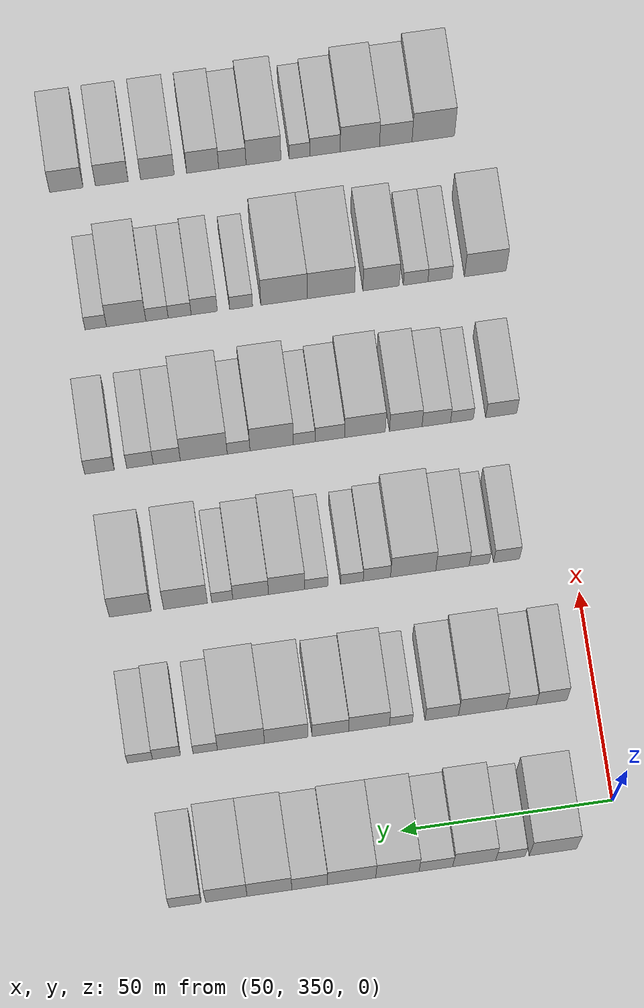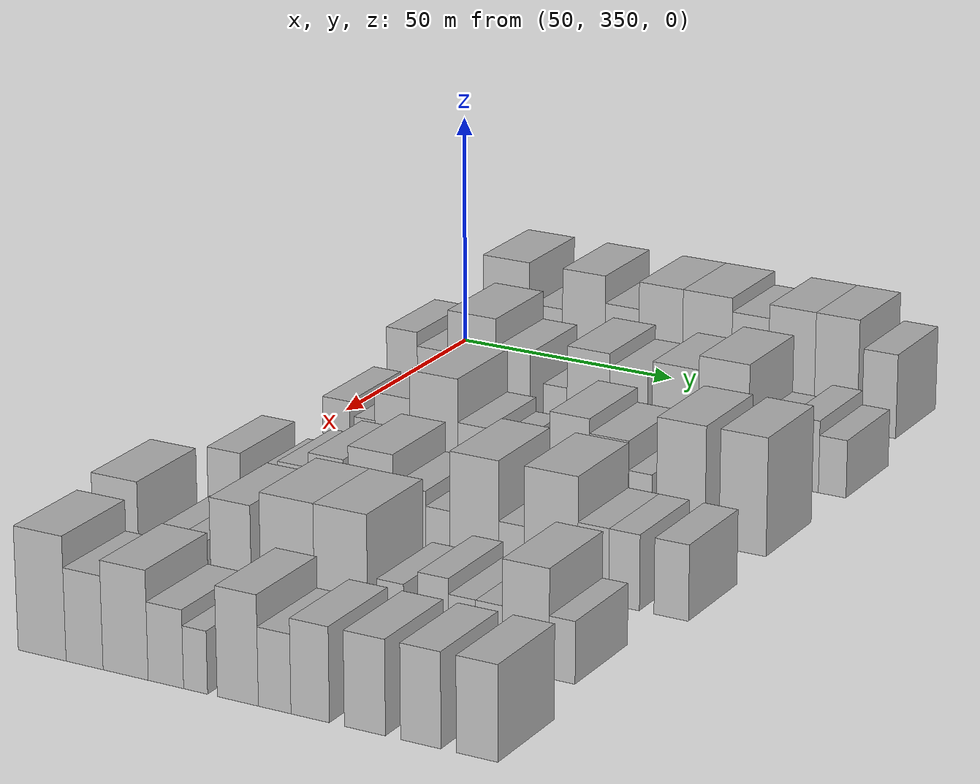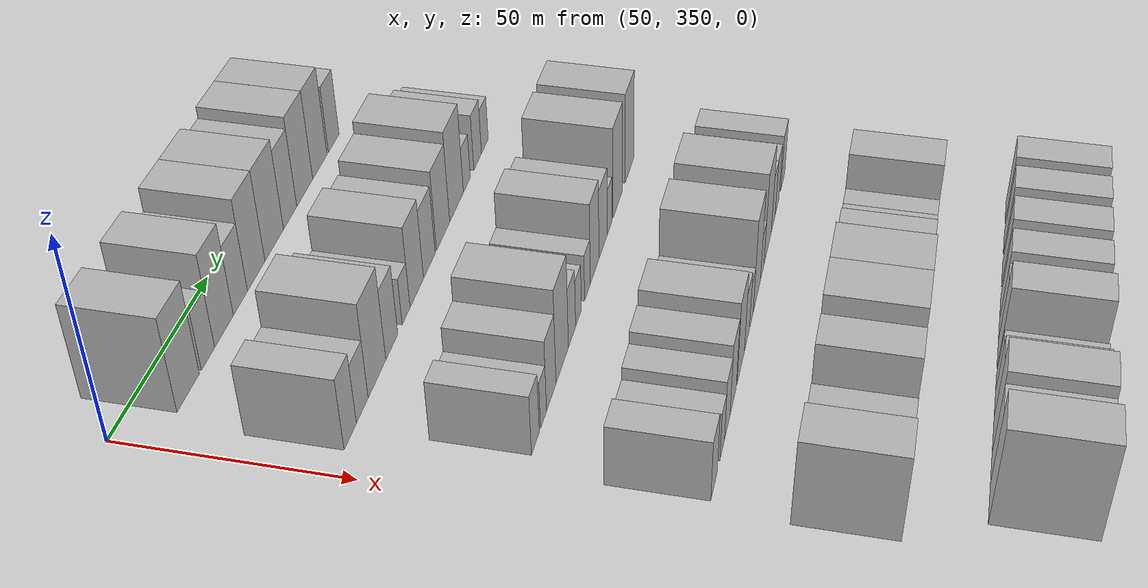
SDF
<sdf version="1.6">
 <world name="default">
  <model name="building_105">
   <static>1</static>
   <pose>50.0000 365.6663 0 0.000000 0.000000 0.000000</pose>
   <link name="link">
    <pose>0 0 12.00 0 0 0</pose>
    <collision name="collision"><geometry><box><size>20.0000 11.1850 24.0000</size></box></geometry></collision>
    <visual name="visual">
     <cast_shadows>0</cast_shadows>
     <geometry><box><size>20.0000 11.1850 24.0000</size></box></geometry>
     <material>
      <script>
       <uri>model://HANNAS_wall/materials/scripts</uri>
       <uri>model://HANNAS_wall/materials/textures</uri>
       <name>vrc/HANNAS_wall</name>
      </script>
     </material>
    </visual>
   </link>
  </model>
  <model name="building_106">
   <static>1</static>
   <pose>50.0000 375.7315 0 0.000000 0.000000 0.000000</pose>
   <link name="link">
    <pose>0 0 7.50 0 0 0</pose>
    <collision name="collision"><geometry><box><size>20.0000 6.9455 15.0000</size></box></geometry></collision>
    <visual name="visual">
     <cast_shadows>0</cast_shadows>
     <geometry><box><size>20.0000 6.9455 15.0000</size></box></geometry>
     <material>
      <script>
       <uri>model://HANNAS_wall/materials/scripts</uri>
       <uri>model://HANNAS_wall/materials/textures</uri>
       <name>vrc/HANNAS_wall</name>
      </script>
     </material>
    </visual>
   </link>
  </model>
  <model name="building_107">
   <static>1</static>
   <pose>50.0000 384.2669 0 0.000000 0.000000 0.000000</pose>
   <link name="link">
    <pose>0 0 12.00 0 0 0</pose>
    <collision name="collision"><geometry><box><size>20.0000 10.1253 24.0000</size></box></geometry></collision>
    <visual name="visual">
     <cast_shadows>0</cast_shadows>
     <geometry><box><size>20.0000 10.1253 24.0000</size></box></geometry>
     <material>
      <script>
       <uri>model://HANNAS_wall/materials/scripts</uri>
       <uri>model://HANNAS_wall/materials/textures</uri>
       <name>vrc/HANNAS_wall</name>
      </script>
     </material>
    </visual>
   </link>
  </model>
  <model name="building_108">
   <static>1</static>
   <pose>50.0000 393.3012 0 0.000000 0.000000 0.000000</pose>
   <link name="link">
    <pose>0 0 9.00 0 0 0</pose>
    <collision name="collision"><geometry><box><size>20.0000 7.9432 18.0000</size></box></geometry></collision>
    <visual name="visual">
     <cast_shadows>0</cast_shadows>
     <geometry><box><size>20.0000 7.9432 18.0000</size></box></geometry>
     <material>
      <script>
       <uri>model://HANNAS_wall/materials/scripts</uri>
       <uri>model://HANNAS_wall/materials/textures</uri>
       <name>vrc/HANNAS_wall</name>
      </script>
     </material>
    </visual>
   </link>
  </model>
  <model name="building_109">
   <static>1</static>
   <pose>50.0000 402.3723 0 0.000000 0.000000 0.000000</pose>
   <link name="link">
    <pose>0 0 12.00 0 0 0</pose>
    <collision name="collision"><geometry><box><size>20.0000 10.1992 24.0000</size></box></geometry></collision>
    <visual name="visual">
     <cast_shadows>0</cast_shadows>
     <geometry><box><size>20.0000 10.1992 24.0000</size></box></geometry>
     <material>
      <script>
       <uri>model://HANNAS_wall/materials/scripts</uri>
       <uri>model://HANNAS_wall/materials/textures</uri>
       <name>vrc/HANNAS_wall</name>
      </script>
     </material>
    </visual>
   </link>
  </model>
  <model name="building_110">
   <static>1</static>
   <pose>50.0000 413.1450 0 0.000000 0.000000 0.000000</pose>
   <link name="link">
    <pose>0 0 12.00 0 0 0</pose>
    <collision name="collision"><geometry><box><size>20.0000 11.3460 24.0000</size></box></geometry></collision>
    <visual name="visual">
     <cast_shadows>0</cast_shadows>
     <geometry><box><size>20.0000 11.3460 24.0000</size></box></geometry>
     <material>
      <script>
       <uri>model://HANNAS_wall/materials/scripts</uri>
       <uri>model://HANNAS_wall/materials/textures</uri>
       <name>vrc/HANNAS_wall</name>
      </script>
     </material>
    </visual>
   </link>
  </model>
  <model name="building_111">
   <static>1</static>
   <pose>50.0000 423.0292 0 0.000000 0.000000 0.000000</pose>
   <link name="link">
    <pose>0 0 10.50 0 0 0</pose>
    <collision name="collision"><geometry><box><size>20.0000 8.4224 21.0000</size></box></geometry></collision>
    <visual name="visual">
     <cast_shadows>0</cast_shadows>
     <geometry><box><size>20.0000 8.4224 21.0000</size></box></geometry>
     <material>
      <script>
       <uri>model://HANNAS_wall/materials/scripts</uri>
       <uri>model://HANNAS_wall/materials/textures</uri>
       <name>vrc/HANNAS_wall</name>
      </script>
     </material>
    </visual>
   </link>
  </model>
  <model name="building_112">
   <static>1</static>
   <pose>50.0000 432.4915 0 0.000000 0.000000 0.000000</pose>
   <link name="link">
    <pose>0 0 12.00 0 0 0</pose>
    <collision name="collision"><geometry><box><size>20.0000 10.5024 24.0000</size></box></geometry></collision>
    <visual name="visual">
     <cast_shadows>0</cast_shadows>
     <geometry><box><size>20.0000 10.5024 24.0000</size></box></geometry>
     <material>
      <script>
       <uri>model://HANNAS_wall/materials/scripts</uri>
       <uri>model://HANNAS_wall/materials/textures</uri>
       <name>vrc/HANNAS_wall</name>
      </script>
     </material>
    </visual>
   </link>
  </model>
  <model name="building_113">
   <static>1</static>
   <pose>50.0000 442.6169 0 0.000000 0.000000 0.000000</pose>
   <link name="link">
    <pose>0 0 12.00 0 0 0</pose>
    <collision name="collision"><geometry><box><size>20.0000 9.7483 24.0000</size></box></geometry></collision>
    <visual name="visual">
     <cast_shadows>0</cast_shadows>
     <geometry><box><size>20.0000 9.7483 24.0000</size></box></geometry>
     <material>
      <script>
       <uri>model://HANNAS_wall/materials/scripts</uri>
       <uri>model://HANNAS_wall/materials/textures</uri>
       <name>vrc/HANNAS_wall</name>
      </script>
     </material>
    </visual>
   </link>
  </model>
  <model name="building_114">
   <static>1</static>
   <pose>50.0000 452.2895 0 0.000000 0.000000 0.000000</pose>
   <link name="link">
    <pose>0 0 9.00 0 0 0</pose>
    <collision name="collision"><geometry><box><size>20.0000 7.5969 18.0000</size></box></geometry></collision>
    <visual name="visual">
     <cast_shadows>0</cast_shadows>
     <geometry><box><size>20.0000 7.5969 18.0000</size></box></geometry>
     <material>
      <script>
       <uri>model://HANNAS_wall/materials/scripts</uri>
       <uri>model://HANNAS_wall/materials/textures</uri>
       <name>vrc/HANNAS_wall</name>
      </script>
     </material>
    </visual>
   </link>
  </model>
  <model name="building_235">
   <static>1</static>
   <pose>85.0000 360.5571 0 0.000000 0.000000 0.000000</pose>
   <link name="link">
    <pose>0 0 9.00 0 0 0</pose>
    <collision name="collision"><geometry><box><size>20.0000 7.2890 18.0000</size></box></geometry></collision>
    <visual name="visual">
     <cast_shadows>0</cast_shadows>
     <geometry><box><size>20.0000 7.2890 18.0000</size></box></geometry>
     <material>
      <script>
       <uri>model://HANNAS_wall/materials/scripts</uri>
       <uri>model://HANNAS_wall/materials/textures</uri>
       <name>vrc/HANNAS_wall</name>
      </script>
     </material>
    </visual>
   </link>
  </model>
  <model name="building_236">
   <static>1</static>
   <pose>85.0000 367.8039 0 0.000000 0.000000 0.000000</pose>
   <link name="link">
    <pose>0 0 7.50 0 0 0</pose>
    <collision name="collision"><geometry><box><size>20.0000 7.2046 15.0000</size></box></geometry></collision>
    <visual name="visual">
     <cast_shadows>0</cast_shadows>
     <geometry><box><size>20.0000 7.2046 15.0000</size></box></geometry>
     <material>
      <script>
       <uri>model://HANNAS_wall/materials/scripts</uri>
       <uri>model://HANNAS_wall/materials/textures</uri>
       <name>vrc/HANNAS_wall</name>
      </script>
     </material>
    </visual>
   </link>
  </model>
  <model name="building_237">
   <static>1</static>
   <pose>85.0000 377.0546 0 0.000000 0.000000 0.000000</pose>
   <link name="link">
    <pose>0 0 12.00 0 0 0</pose>
    <collision name="collision"><geometry><box><size>20.0000 11.2967 24.0000</size></box></geometry></collision>
    <visual name="visual">
     <cast_shadows>0</cast_shadows>
     <geometry><box><size>20.0000 11.2967 24.0000</size></box></geometry>
     <material>
      <script>
       <uri>model://HANNAS_wall/materials/scripts</uri>
       <uri>model://HANNAS_wall/materials/textures</uri>
       <name>vrc/HANNAS_wall</name>
      </script>
     </material>
    </visual>
   </link>
  </model>
  <model name="building_238">
   <static>1</static>
   <pose>85.0000 386.6713 0 0.000000 0.000000 0.000000</pose>
   <link name="link">
    <pose>0 0 9.00 0 0 0</pose>
    <collision name="collision"><geometry><box><size>20.0000 7.9366 18.0000</size></box></geometry></collision>
    <visual name="visual">
     <cast_shadows>0</cast_shadows>
     <geometry><box><size>20.0000 7.9366 18.0000</size></box></geometry>
     <material>
      <script>
       <uri>model://HANNAS_wall/materials/scripts</uri>
       <uri>model://HANNAS_wall/materials/textures</uri>
       <name>vrc/HANNAS_wall</name>
      </script>
     </material>
    </visual>
   </link>
  </model>
  <model name="building_239">
   <static>1</static>
   <pose>85.0000 396.3667 0 0.000000 0.000000 0.000000</pose>
   <link name="link">
    <pose>0 0 6.00 0 0 0</pose>
    <collision name="collision"><geometry><box><size>20.0000 5.4542 12.0000</size></box></geometry></collision>
    <visual name="visual">
     <cast_shadows>0</cast_shadows>
     <geometry><box><size>20.0000 5.4542 12.0000</size></box></geometry>
     <material>
      <script>
       <uri>model://HANNAS_wall/materials/scripts</uri>
       <uri>model://HANNAS_wall/materials/textures</uri>
       <name>vrc/HANNAS_wall</name>
      </script>
     </material>
    </visual>
   </link>
  </model>
  <model name="building_240">
   <static>1</static>
   <pose>85.0000 403.9220 0 0.000000 0.000000 0.000000</pose>
   <link name="link">
    <pose>0 0 10.50 0 0 0</pose>
    <collision name="collision"><geometry><box><size>20.0000 9.6565 21.0000</size></box></geometry></collision>
    <visual name="visual">
     <cast_shadows>0</cast_shadows>
     <geometry><box><size>20.0000 9.6565 21.0000</size></box></geometry>
     <material>
      <script>
       <uri>model://HANNAS_wall/materials/scripts</uri>
       <uri>model://HANNAS_wall/materials/textures</uri>
       <name>vrc/HANNAS_wall</name>
      </script>
     </material>
    </visual>
   </link>
  </model>
  <model name="building_241">
   <static>1</static>
   <pose>85.0000 413.0746 0 0.000000 0.000000 0.000000</pose>
   <link name="link">
    <pose>0 0 9.00 0 0 0</pose>
    <collision name="collision"><geometry><box><size>20.0000 8.6486 18.0000</size></box></geometry></collision>
    <visual name="visual">
     <cast_shadows>0</cast_shadows>
     <geometry><box><size>20.0000 8.6486 18.0000</size></box></geometry>
     <material>
      <script>
       <uri>model://HANNAS_wall/materials/scripts</uri>
       <uri>model://HANNAS_wall/materials/textures</uri>
       <name>vrc/HANNAS_wall</name>
      </script>
     </material>
    </visual>
   </link>
  </model>
  <model name="building_242">
   <static>1</static>
   <pose>85.0000 423.5470 0 0.000000 0.000000 0.000000</pose>
   <link name="link">
    <pose>0 0 10.50 0 0 0</pose>
    <collision name="collision"><geometry><box><size>20.0000 10.2962 21.0000</size></box></geometry></collision>
    <visual name="visual">
     <cast_shadows>0</cast_shadows>
     <geometry><box><size>20.0000 10.2962 21.0000</size></box></geometry>
     <material>
      <script>
       <uri>model://HANNAS_wall/materials/scripts</uri>
       <uri>model://HANNAS_wall/materials/textures</uri>
       <name>vrc/HANNAS_wall</name>
      </script>
     </material>
    </visual>
   </link>
  </model>
  <model name="building_243">
   <static>1</static>
   <pose>85.0000 434.2577 0 0.000000 0.000000 0.000000</pose>
   <link name="link">
    <pose>0 0 12.00 0 0 0</pose>
    <collision name="collision"><geometry><box><size>20.0000 11.1253 24.0000</size></box></geometry></collision>
    <visual name="visual">
     <cast_shadows>0</cast_shadows>
     <geometry><box><size>20.0000 11.1253 24.0000</size></box></geometry>
     <material>
      <script>
       <uri>model://HANNAS_wall/materials/scripts</uri>
       <uri>model://HANNAS_wall/materials/textures</uri>
       <name>vrc/HANNAS_wall</name>
      </script>
     </material>
    </visual>
   </link>
  </model>
  <model name="building_244">
   <static>1</static>
   <pose>85.0000 442.7105 0 0.000000 0.000000 0.000000</pose>
   <link name="link">
    <pose>0 0 6.00 0 0 0</pose>
    <collision name="collision"><geometry><box><size>20.0000 5.7803 12.0000</size></box></geometry></collision>
    <visual name="visual">
     <cast_shadows>0</cast_shadows>
     <geometry><box><size>20.0000 5.7803 12.0000</size></box></geometry>
     <material>
      <script>
       <uri>model://HANNAS_wall/materials/scripts</uri>
       <uri>model://HANNAS_wall/materials/textures</uri>
       <name>vrc/HANNAS_wall</name>
      </script>
     </material>
    </visual>
   </link>
  </model>
  <model name="building_245">
   <static>1</static>
   <pose>85.0000 451.9002 0 0.000000 0.000000 0.000000</pose>
   <link name="link">
    <pose>0 0 7.50 0 0 0</pose>
    <collision name="collision"><geometry><box><size>20.0000 6.5991 15.0000</size></box></geometry></collision>
    <visual name="visual">
     <cast_shadows>0</cast_shadows>
     <geometry><box><size>20.0000 6.5991 15.0000</size></box></geometry>
     <material>
      <script>
       <uri>model://HANNAS_wall/materials/scripts</uri>
       <uri>model://HANNAS_wall/materials/textures</uri>
       <name>vrc/HANNAS_wall</name>
      </script>
     </material>
    </visual>
   </link>
  </model>
  <model name="building_246">
   <static>1</static>
   <pose>85.0000 458.1864 0 0.000000 0.000000 0.000000</pose>
   <link name="link">
    <pose>0 0 6.00 0 0 0</pose>
    <collision name="collision"><geometry><box><size>20.0000 5.9734 12.0000</size></box></geometry></collision>
    <visual name="visual">
     <cast_shadows>0</cast_shadows>
     <geometry><box><size>20.0000 5.9734 12.0000</size></box></geometry>
     <material>
      <script>
       <uri>model://HANNAS_wall/materials/scripts</uri>
       <uri>model://HANNAS_wall/materials/textures</uri>
       <name>vrc/HANNAS_wall</name>
      </script>
     </material>
    </visual>
   </link>
  </model>
  <model name="building_365">
   <static>1</static>
   <pose>120.0000 365.9014 0 0.000000 0.000000 0.000000</pose>
   <link name="link">
    <pose>0 0 7.50 0 0 0</pose>
    <collision name="collision"><geometry><box><size>20.0000 6.2448 15.0000</size></box></geometry></collision>
    <visual name="visual">
     <cast_shadows>0</cast_shadows>
     <geometry><box><size>20.0000 6.2448 15.0000</size></box></geometry>
     <material>
      <script>
       <uri>model://HANNAS_wall/materials/scripts</uri>
       <uri>model://HANNAS_wall/materials/textures</uri>
       <name>vrc/HANNAS_wall</name>
      </script>
     </material>
    </visual>
   </link>
  </model>
  <model name="building_366">
   <static>1</static>
   <pose>120.0000 372.4308 0 0.000000 0.000000 0.000000</pose>
   <link name="link">
    <pose>0 0 6.00 0 0 0</pose>
    <collision name="collision"><geometry><box><size>20.0000 4.8140 12.0000</size></box></geometry></collision>
    <visual name="visual">
     <cast_shadows>0</cast_shadows>
     <geometry><box><size>20.0000 4.8140 12.0000</size></box></geometry>
     <material>
      <script>
       <uri>model://HANNAS_wall/materials/scripts</uri>
       <uri>model://HANNAS_wall/materials/textures</uri>
       <name>vrc/HANNAS_wall</name>
      </script>
     </material>
    </visual>
   </link>
  </model>
  <model name="building_367">
   <static>1</static>
   <pose>120.0000 378.8372 0 0.000000 0.000000 0.000000</pose>
   <link name="link">
    <pose>0 0 9.00 0 0 0</pose>
    <collision name="collision"><geometry><box><size>20.0000 7.9988 18.0000</size></box></geometry></collision>
    <visual name="visual">
     <cast_shadows>0</cast_shadows>
     <geometry><box><size>20.0000 7.9988 18.0000</size></box></geometry>
     <material>
      <script>
       <uri>model://HANNAS_wall/materials/scripts</uri>
       <uri>model://HANNAS_wall/materials/textures</uri>
       <name>vrc/HANNAS_wall</name>
      </script>
     </material>
    </visual>
   </link>
  </model>
  <model name="building_368">
   <static>1</static>
   <pose>120.0000 388.2466 0 0.000000 0.000000 0.000000</pose>
   <link name="link">
    <pose>0 0 12.00 0 0 0</pose>
    <collision name="collision"><geometry><box><size>20.0000 10.8201 24.0000</size></box></geometry></collision>
    <visual name="visual">
     <cast_shadows>0</cast_shadows>
     <geometry><box><size>20.0000 10.8201 24.0000</size></box></geometry>
     <material>
      <script>
       <uri>model://HANNAS_wall/materials/scripts</uri>
       <uri>model://HANNAS_wall/materials/textures</uri>
       <name>vrc/HANNAS_wall</name>
      </script>
     </material>
    </visual>
   </link>
  </model>
  <model name="building_369">
   <static>1</static>
   <pose>120.0000 396.9209 0 0.000000 0.000000 0.000000</pose>
   <link name="link">
    <pose>0 0 7.50 0 0 0</pose>
    <collision name="collision"><geometry><box><size>20.0000 6.5285 15.0000</size></box></geometry></collision>
    <visual name="visual">
     <cast_shadows>0</cast_shadows>
     <geometry><box><size>20.0000 6.5285 15.0000</size></box></geometry>
     <material>
      <script>
       <uri>model://HANNAS_wall/materials/scripts</uri>
       <uri>model://HANNAS_wall/materials/textures</uri>
       <name>vrc/HANNAS_wall</name>
      </script>
     </material>
    </visual>
   </link>
  </model>
  <model name="building_370">
   <static>1</static>
   <pose>120.0000 402.8882 0 0.000000 0.000000 0.000000</pose>
   <link name="link">
    <pose>0 0 6.00 0 0 0</pose>
    <collision name="collision"><geometry><box><size>20.0000 5.4060 12.0000</size></box></geometry></collision>
    <visual name="visual">
     <cast_shadows>0</cast_shadows>
     <geometry><box><size>20.0000 5.4060 12.0000</size></box></geometry>
     <material>
      <script>
       <uri>model://HANNAS_wall/materials/scripts</uri>
       <uri>model://HANNAS_wall/materials/textures</uri>
       <name>vrc/HANNAS_wall</name>
      </script>
     </material>
    </visual>
   </link>
  </model>
  <model name="building_371">
   <static>1</static>
   <pose>120.0000 411.3618 0 0.000000 0.000000 0.000000</pose>
   <link name="link">
    <pose>0 0 6.00 0 0 0</pose>
    <collision name="collision"><geometry><box><size>20.0000 5.5411 12.0000</size></box></geometry></collision>
    <visual name="visual">
     <cast_shadows>0</cast_shadows>
     <geometry><box><size>20.0000 5.5411 12.0000</size></box></geometry>
     <material>
      <script>
       <uri>model://HANNAS_wall/materials/scripts</uri>
       <uri>model://HANNAS_wall/materials/textures</uri>
       <name>vrc/HANNAS_wall</name>
      </script>
     </material>
    </visual>
   </link>
  </model>
  <model name="building_372">
   <static>1</static>
   <pose>120.0000 418.4620 0 0.000000 0.000000 0.000000</pose>
   <link name="link">
    <pose>0 0 10.50 0 0 0</pose>
    <collision name="collision"><geometry><box><size>20.0000 8.6594 21.0000</size></box></geometry></collision>
    <visual name="visual">
     <cast_shadows>0</cast_shadows>
     <geometry><box><size>20.0000 8.6594 21.0000</size></box></geometry>
     <material>
      <script>
       <uri>model://HANNAS_wall/materials/scripts</uri>
       <uri>model://HANNAS_wall/materials/textures</uri>
       <name>vrc/HANNAS_wall</name>
      </script>
     </material>
    </visual>
   </link>
  </model>
  <model name="building_373">
   <static>1</static>
   <pose>120.0000 427.0505 0 0.000000 0.000000 0.000000</pose>
   <link name="link">
    <pose>0 0 9.00 0 0 0</pose>
    <collision name="collision"><geometry><box><size>20.0000 8.5176 18.0000</size></box></geometry></collision>
    <visual name="visual">
     <cast_shadows>0</cast_shadows>
     <geometry><box><size>20.0000 8.5176 18.0000</size></box></geometry>
     <material>
      <script>
       <uri>model://HANNAS_wall/materials/scripts</uri>
       <uri>model://HANNAS_wall/materials/textures</uri>
       <name>vrc/HANNAS_wall</name>
      </script>
     </material>
    </visual>
   </link>
  </model>
  <model name="building_374">
   <static>1</static>
   <pose>120.0000 433.8260 0 0.000000 0.000000 0.000000</pose>
   <link name="link">
    <pose>0 0 6.00 0 0 0</pose>
    <collision name="collision"><geometry><box><size>20.0000 5.0334 12.0000</size></box></geometry></collision>
    <visual name="visual">
     <cast_shadows>0</cast_shadows>
     <geometry><box><size>20.0000 5.0334 12.0000</size></box></geometry>
     <material>
      <script>
       <uri>model://HANNAS_wall/materials/scripts</uri>
       <uri>model://HANNAS_wall/materials/textures</uri>
       <name>vrc/HANNAS_wall</name>
      </script>
     </material>
    </visual>
   </link>
  </model>
  <model name="building_375">
   <static>1</static>
   <pose>120.0000 442.5519 0 0.000000 0.000000 0.000000</pose>
   <link name="link">
    <pose>0 0 12.00 0 0 0</pose>
    <collision name="collision"><geometry><box><size>20.0000 10.4185 24.0000</size></box></geometry></collision>
    <visual name="visual">
     <cast_shadows>0</cast_shadows>
     <geometry><box><size>20.0000 10.4185 24.0000</size></box></geometry>
     <material>
      <script>
       <uri>model://HANNAS_wall/materials/scripts</uri>
       <uri>model://HANNAS_wall/materials/textures</uri>
       <name>vrc/HANNAS_wall</name>
      </script>
     </material>
    </visual>
   </link>
  </model>
  <model name="building_376">
   <static>1</static>
   <pose>120.0000 455.7321 0 0.000000 0.000000 0.000000</pose>
   <link name="link">
    <pose>0 0 12.00 0 0 0</pose>
    <collision name="collision"><geometry><box><size>20.0000 9.9419 24.0000</size></box></geometry></collision>
    <visual name="visual">
     <cast_shadows>0</cast_shadows>
     <geometry><box><size>20.0000 9.9419 24.0000</size></box></geometry>
     <material>
      <script>
       <uri>model://HANNAS_wall/materials/scripts</uri>
       <uri>model://HANNAS_wall/materials/textures</uri>
       <name>vrc/HANNAS_wall</name>
      </script>
     </material>
    </visual>
   </link>
  </model>
  <model name="building_494">
   <static>1</static>
   <pose>155.0000 361.8194 0 0.000000 0.000000 0.000000</pose>
   <link name="link">
    <pose>0 0 7.50 0 0 0</pose>
    <collision name="collision"><geometry><box><size>20.0000 7.4867 15.0000</size></box></geometry></collision>
    <visual name="visual">
     <cast_shadows>0</cast_shadows>
     <geometry><box><size>20.0000 7.4867 15.0000</size></box></geometry>
     <material>
      <script>
       <uri>model://HANNAS_wall/materials/scripts</uri>
       <uri>model://HANNAS_wall/materials/textures</uri>
       <name>vrc/HANNAS_wall</name>
      </script>
     </material>
    </visual>
   </link>
  </model>
  <model name="building_495">
   <static>1</static>
   <pose>155.0000 371.3058 0 0.000000 0.000000 0.000000</pose>
   <link name="link">
    <pose>0 0 6.00 0 0 0</pose>
    <collision name="collision"><geometry><box><size>20.0000 5.4862 12.0000</size></box></geometry></collision>
    <visual name="visual">
     <cast_shadows>0</cast_shadows>
     <geometry><box><size>20.0000 5.4862 12.0000</size></box></geometry>
     <material>
      <script>
       <uri>model://HANNAS_wall/materials/scripts</uri>
       <uri>model://HANNAS_wall/materials/textures</uri>
       <name>vrc/HANNAS_wall</name>
      </script>
     </material>
    </visual>
   </link>
  </model>
  <model name="building_496">
   <static>1</static>
   <pose>155.0000 377.4819 0 0.000000 0.000000 0.000000</pose>
   <link name="link">
    <pose>0 0 7.50 0 0 0</pose>
    <collision name="collision"><geometry><box><size>20.0000 6.8660 15.0000</size></box></geometry></collision>
    <visual name="visual">
     <cast_shadows>0</cast_shadows>
     <geometry><box><size>20.0000 6.8660 15.0000</size></box></geometry>
     <material>
      <script>
       <uri>model://HANNAS_wall/materials/scripts</uri>
       <uri>model://HANNAS_wall/materials/textures</uri>
       <name>vrc/HANNAS_wall</name>
      </script>
     </material>
    </visual>
   </link>
  </model>
  <model name="building_497">
   <static>1</static>
   <pose>155.0000 384.8370 0 0.000000 0.000000 0.000000</pose>
   <link name="link">
    <pose>0 0 9.00 0 0 0</pose>
    <collision name="collision"><geometry><box><size>20.0000 7.8441 18.0000</size></box></geometry></collision>
    <visual name="visual">
     <cast_shadows>0</cast_shadows>
     <geometry><box><size>20.0000 7.8441 18.0000</size></box></geometry>
     <material>
      <script>
       <uri>model://HANNAS_wall/materials/scripts</uri>
       <uri>model://HANNAS_wall/materials/textures</uri>
       <name>vrc/HANNAS_wall</name>
      </script>
     </material>
    </visual>
   </link>
  </model>
  <model name="building_498">
   <static>1</static>
   <pose>155.0000 394.6449 0 0.000000 0.000000 0.000000</pose>
   <link name="link">
    <pose>0 0 10.50 0 0 0</pose>
    <collision name="collision"><geometry><box><size>20.0000 9.7717 21.0000</size></box></geometry></collision>
    <visual name="visual">
     <cast_shadows>0</cast_shadows>
     <geometry><box><size>20.0000 9.7717 21.0000</size></box></geometry>
     <material>
      <script>
       <uri>model://HANNAS_wall/materials/scripts</uri>
       <uri>model://HANNAS_wall/materials/textures</uri>
       <name>vrc/HANNAS_wall</name>
      </script>
     </material>
    </visual>
   </link>
  </model>
  <model name="building_499">
   <static>1</static>
   <pose>155.0000 403.0819 0 0.000000 0.000000 0.000000</pose>
   <link name="link">
    <pose>0 0 7.50 0 0 0</pose>
    <collision name="collision"><geometry><box><size>20.0000 7.1024 15.0000</size></box></geometry></collision>
    <visual name="visual">
     <cast_shadows>0</cast_shadows>
     <geometry><box><size>20.0000 7.1024 15.0000</size></box></geometry>
     <material>
      <script>
       <uri>model://HANNAS_wall/materials/scripts</uri>
       <uri>model://HANNAS_wall/materials/textures</uri>
       <name>vrc/HANNAS_wall</name>
      </script>
     </material>
    </visual>
   </link>
  </model>
  <model name="building_500">
   <static>1</static>
   <pose>155.0000 409.2445 0 0.000000 0.000000 0.000000</pose>
   <link name="link">
    <pose>0 0 6.00 0 0 0</pose>
    <collision name="collision"><geometry><box><size>20.0000 5.2230 12.0000</size></box></geometry></collision>
    <visual name="visual">
     <cast_shadows>0</cast_shadows>
     <geometry><box><size>20.0000 5.2230 12.0000</size></box></geometry>
     <material>
      <script>
       <uri>model://HANNAS_wall/materials/scripts</uri>
       <uri>model://HANNAS_wall/materials/textures</uri>
       <name>vrc/HANNAS_wall</name>
      </script>
     </material>
    </visual>
   </link>
  </model>
  <model name="building_501">
   <static>1</static>
   <pose>155.0000 417.0658 0 0.000000 0.000000 0.000000</pose>
   <link name="link">
    <pose>0 0 12.00 0 0 0</pose>
    <collision name="collision"><geometry><box><size>20.0000 10.4196 24.0000</size></box></geometry></collision>
    <visual name="visual">
     <cast_shadows>0</cast_shadows>
     <geometry><box><size>20.0000 10.4196 24.0000</size></box></geometry>
     <material>
      <script>
       <uri>model://HANNAS_wall/materials/scripts</uri>
       <uri>model://HANNAS_wall/materials/textures</uri>
       <name>vrc/HANNAS_wall</name>
      </script>
     </material>
    </visual>
   </link>
  </model>
  <model name="building_502">
   <static>1</static>
   <pose>155.0000 425.0148 0 0.000000 0.000000 0.000000</pose>
   <link name="link">
    <pose>0 0 6.00 0 0 0</pose>
    <collision name="collision"><geometry><box><size>20.0000 5.4784 12.0000</size></box></geometry></collision>
    <visual name="visual">
     <cast_shadows>0</cast_shadows>
     <geometry><box><size>20.0000 5.4784 12.0000</size></box></geometry>
     <material>
      <script>
       <uri>model://HANNAS_wall/materials/scripts</uri>
       <uri>model://HANNAS_wall/materials/textures</uri>
       <name>vrc/HANNAS_wall</name>
      </script>
     </material>
    </visual>
   </link>
  </model>
  <model name="building_503">
   <static>1</static>
   <pose>155.0000 433.3730 0 0.000000 0.000000 0.000000</pose>
   <link name="link">
    <pose>0 0 12.00 0 0 0</pose>
    <collision name="collision"><geometry><box><size>20.0000 11.2380 24.0000</size></box></geometry></collision>
    <visual name="visual">
     <cast_shadows>0</cast_shadows>
     <geometry><box><size>20.0000 11.2380 24.0000</size></box></geometry>
     <material>
      <script>
       <uri>model://HANNAS_wall/materials/scripts</uri>
       <uri>model://HANNAS_wall/materials/textures</uri>
       <name>vrc/HANNAS_wall</name>
      </script>
     </material>
    </visual>
   </link>
  </model>
  <model name="building_504">
   <static>1</static>
   <pose>155.0000 442.2432 0 0.000000 0.000000 0.000000</pose>
   <link name="link">
    <pose>0 0 7.50 0 0 0</pose>
    <collision name="collision"><geometry><box><size>20.0000 6.5022 15.0000</size></box></geometry></collision>
    <visual name="visual">
     <cast_shadows>0</cast_shadows>
     <geometry><box><size>20.0000 6.5022 15.0000</size></box></geometry>
     <material>
      <script>
       <uri>model://HANNAS_wall/materials/scripts</uri>
       <uri>model://HANNAS_wall/materials/textures</uri>
       <name>vrc/HANNAS_wall</name>
      </script>
     </material>
    </visual>
   </link>
  </model>
  <model name="building_505">
   <static>1</static>
   <pose>155.0000 448.6681 0 0.000000 0.000000 0.000000</pose>
   <link name="link">
    <pose>0 0 7.50 0 0 0</pose>
    <collision name="collision"><geometry><box><size>20.0000 6.3477 15.0000</size></box></geometry></collision>
    <visual name="visual">
     <cast_shadows>0</cast_shadows>
     <geometry><box><size>20.0000 6.3477 15.0000</size></box></geometry>
     <material>
      <script>
       <uri>model://HANNAS_wall/materials/scripts</uri>
       <uri>model://HANNAS_wall/materials/textures</uri>
       <name>vrc/HANNAS_wall</name>
      </script>
     </material>
    </visual>
   </link>
  </model>
  <model name="building_506">
   <static>1</static>
   <pose>155.0000 458.3751 0 0.000000 0.000000 0.000000</pose>
   <link name="link">
    <pose>0 0 7.50 0 0 0</pose>
    <collision name="collision"><geometry><box><size>20.0000 7.0664 15.0000</size></box></geometry></collision>
    <visual name="visual">
     <cast_shadows>0</cast_shadows>
     <geometry><box><size>20.0000 7.0664 15.0000</size></box></geometry>
     <material>
      <script>
       <uri>model://HANNAS_wall/materials/scripts</uri>
       <uri>model://HANNAS_wall/materials/textures</uri>
       <name>vrc/HANNAS_wall</name>
      </script>
     </material>
    </visual>
   </link>
  </model>
  <model name="building_619">
   <static>1</static>
   <pose>190.0000 360.3491 0 0.000000 0.000000 0.000000</pose>
   <link name="link">
    <pose>0 0 10.50 0 0 0</pose>
    <collision name="collision"><geometry><box><size>20.0000 10.1188 21.0000</size></box></geometry></collision>
    <visual name="visual">
     <cast_shadows>0</cast_shadows>
     <geometry><box><size>20.0000 10.1188 21.0000</size></box></geometry>
     <material>
      <script>
       <uri>model://HANNAS_wall/materials/scripts</uri>
       <uri>model://HANNAS_wall/materials/textures</uri>
       <name>vrc/HANNAS_wall</name>
      </script>
     </material>
    </visual>
   </link>
  </model>
  <model name="building_620">
   <static>1</static>
   <pose>190.0000 371.3289 0 0.000000 0.000000 0.000000</pose>
   <link name="link">
    <pose>0 0 6.00 0 0 0</pose>
    <collision name="collision"><geometry><box><size>20.0000 5.8408 12.0000</size></box></geometry></collision>
    <visual name="visual">
     <cast_shadows>0</cast_shadows>
     <geometry><box><size>20.0000 5.8408 12.0000</size></box></geometry>
     <material>
      <script>
       <uri>model://HANNAS_wall/materials/scripts</uri>
       <uri>model://HANNAS_wall/materials/textures</uri>
       <name>vrc/HANNAS_wall</name>
      </script>
     </material>
    </visual>
   </link>
  </model>
  <model name="building_621">
   <static>1</static>
   <pose>190.0000 377.2339 0 0.000000 0.000000 0.000000</pose>
   <link name="link">
    <pose>0 0 6.00 0 0 0</pose>
    <collision name="collision"><geometry><box><size>20.0000 5.9692 12.0000</size></box></geometry></collision>
    <visual name="visual">
     <cast_shadows>0</cast_shadows>
     <geometry><box><size>20.0000 5.9692 12.0000</size></box></geometry>
     <material>
      <script>
       <uri>model://HANNAS_wall/materials/scripts</uri>
       <uri>model://HANNAS_wall/materials/textures</uri>
       <name>vrc/HANNAS_wall</name>
      </script>
     </material>
    </visual>
   </link>
  </model>
  <model name="building_622">
   <static>1</static>
   <pose>190.0000 385.6194 0 0.000000 0.000000 0.000000</pose>
   <link name="link">
    <pose>0 0 10.50 0 0 0</pose>
    <collision name="collision"><geometry><box><size>20.0000 8.8018 21.0000</size></box></geometry></collision>
    <visual name="visual">
     <cast_shadows>0</cast_shadows>
     <geometry><box><size>20.0000 8.8018 21.0000</size></box></geometry>
     <material>
      <script>
       <uri>model://HANNAS_wall/materials/scripts</uri>
       <uri>model://HANNAS_wall/materials/textures</uri>
       <name>vrc/HANNAS_wall</name>
      </script>
     </material>
    </visual>
   </link>
  </model>
  <model name="building_623">
   <static>1</static>
   <pose>190.0000 397.7536 0 0.000000 0.000000 0.000000</pose>
   <link name="link">
    <pose>0 0 12.00 0 0 0</pose>
    <collision name="collision"><geometry><box><size>20.0000 11.4666 24.0000</size></box></geometry></collision>
    <visual name="visual">
     <cast_shadows>0</cast_shadows>
     <geometry><box><size>20.0000 11.4666 24.0000</size></box></geometry>
     <material>
      <script>
       <uri>model://HANNAS_wall/materials/scripts</uri>
       <uri>model://HANNAS_wall/materials/textures</uri>
       <name>vrc/HANNAS_wall</name>
      </script>
     </material>
    </visual>
   </link>
  </model>
  <model name="building_624">
   <static>1</static>
   <pose>190.0000 409.1063 0 0.000000 0.000000 0.000000</pose>
   <link name="link">
    <pose>0 0 12.00 0 0 0</pose>
    <collision name="collision"><geometry><box><size>20.0000 11.2388 24.0000</size></box></geometry></collision>
    <visual name="visual">
     <cast_shadows>0</cast_shadows>
     <geometry><box><size>20.0000 11.2388 24.0000</size></box></geometry>
     <material>
      <script>
       <uri>model://HANNAS_wall/materials/scripts</uri>
       <uri>model://HANNAS_wall/materials/textures</uri>
       <name>vrc/HANNAS_wall</name>
      </script>
     </material>
    </visual>
   </link>
  </model>
  <model name="building_625">
   <static>1</static>
   <pose>190.0000 419.4957 0 0.000000 0.000000 0.000000</pose>
   <link name="link">
    <pose>0 0 6.00 0 0 0</pose>
    <collision name="collision"><geometry><box><size>20.0000 5.5401 12.0000</size></box></geometry></collision>
    <visual name="visual">
     <cast_shadows>0</cast_shadows>
     <geometry><box><size>20.0000 5.5401 12.0000</size></box></geometry>
     <material>
      <script>
       <uri>model://HANNAS_wall/materials/scripts</uri>
       <uri>model://HANNAS_wall/materials/textures</uri>
       <name>vrc/HANNAS_wall</name>
      </script>
     </material>
    </visual>
   </link>
  </model>
  <model name="building_626">
   <static>1</static>
   <pose>190.0000 428.4247 0 0.000000 0.000000 0.000000</pose>
   <link name="link">
    <pose>0 0 7.50 0 0 0</pose>
    <collision name="collision"><geometry><box><size>20.0000 6.3179 15.0000</size></box></geometry></collision>
    <visual name="visual">
     <cast_shadows>0</cast_shadows>
     <geometry><box><size>20.0000 6.3179 15.0000</size></box></geometry>
     <material>
      <script>
       <uri>model://HANNAS_wall/materials/scripts</uri>
       <uri>model://HANNAS_wall/materials/textures</uri>
       <name>vrc/HANNAS_wall</name>
      </script>
     </material>
    </visual>
   </link>
  </model>
  <model name="building_627">
   <static>1</static>
   <pose>190.0000 434.3562 0 0.000000 0.000000 0.000000</pose>
   <link name="link">
    <pose>0 0 6.00 0 0 0</pose>
    <collision name="collision"><geometry><box><size>20.0000 5.5451 12.0000</size></box></geometry></collision>
    <visual name="visual">
     <cast_shadows>0</cast_shadows>
     <geometry><box><size>20.0000 5.5451 12.0000</size></box></geometry>
     <material>
      <script>
       <uri>model://HANNAS_wall/materials/scripts</uri>
       <uri>model://HANNAS_wall/materials/textures</uri>
       <name>vrc/HANNAS_wall</name>
      </script>
     </material>
    </visual>
   </link>
  </model>
  <model name="building_628">
   <static>1</static>
   <pose>190.0000 439.8191 0 0.000000 0.000000 0.000000</pose>
   <link name="link">
    <pose>0 0 6.00 0 0 0</pose>
    <collision name="collision"><geometry><box><size>20.0000 5.3806 12.0000</size></box></geometry></collision>
    <visual name="visual">
     <cast_shadows>0</cast_shadows>
     <geometry><box><size>20.0000 5.3806 12.0000</size></box></geometry>
     <material>
      <script>
       <uri>model://HANNAS_wall/materials/scripts</uri>
       <uri>model://HANNAS_wall/materials/textures</uri>
       <name>vrc/HANNAS_wall</name>
      </script>
     </material>
    </visual>
   </link>
  </model>
  <model name="building_629">
   <static>1</static>
   <pose>190.0000 447.2632 0 0.000000 0.000000 0.000000</pose>
   <link name="link">
    <pose>0 0 10.50 0 0 0</pose>
    <collision name="collision"><geometry><box><size>20.0000 9.5075 21.0000</size></box></geometry></collision>
    <visual name="visual">
     <cast_shadows>0</cast_shadows>
     <geometry><box><size>20.0000 9.5075 21.0000</size></box></geometry>
     <material>
      <script>
       <uri>model://HANNAS_wall/materials/scripts</uri>
       <uri>model://HANNAS_wall/materials/textures</uri>
       <name>vrc/HANNAS_wall</name>
      </script>
     </material>
    </visual>
   </link>
  </model>
  <model name="building_630">
   <static>1</static>
   <pose>190.0000 454.6058 0 0.000000 0.000000 0.000000</pose>
   <link name="link">
    <pose>0 0 6.00 0 0 0</pose>
    <collision name="collision"><geometry><box><size>20.0000 5.1779 12.0000</size></box></geometry></collision>
    <visual name="visual">
     <cast_shadows>0</cast_shadows>
     <geometry><box><size>20.0000 5.1779 12.0000</size></box></geometry>
     <material>
      <script>
       <uri>model://HANNAS_wall/materials/scripts</uri>
       <uri>model://HANNAS_wall/materials/textures</uri>
       <name>vrc/HANNAS_wall</name>
      </script>
     </material>
    </visual>
   </link>
  </model>
  <model name="building_746">
   <static>1</static>
   <pose>225.0000 367.7334 0 0.000000 0.000000 0.000000</pose>
   <link name="link">
    <pose>0 0 12.00 0 0 0</pose>
    <collision name="collision"><geometry><box><size>20.0000 10.3671 24.0000</size></box></geometry></collision>
    <visual name="visual">
     <cast_shadows>0</cast_shadows>
     <geometry><box><size>20.0000 10.3671 24.0000</size></box></geometry>
     <material>
      <script>
       <uri>model://HANNAS_wall/materials/scripts</uri>
       <uri>model://HANNAS_wall/materials/textures</uri>
       <name>vrc/HANNAS_wall</name>
      </script>
     </material>
    </visual>
   </link>
  </model>
  <model name="building_747">
   <static>1</static>
   <pose>225.0000 376.8841 0 0.000000 0.000000 0.000000</pose>
   <link name="link">
    <pose>0 0 9.00 0 0 0</pose>
    <collision name="collision"><geometry><box><size>20.0000 7.9343 18.0000</size></box></geometry></collision>
    <visual name="visual">
     <cast_shadows>0</cast_shadows>
     <geometry><box><size>20.0000 7.9343 18.0000</size></box></geometry>
     <material>
      <script>
       <uri>model://HANNAS_wall/materials/scripts</uri>
       <uri>model://HANNAS_wall/materials/textures</uri>
       <name>vrc/HANNAS_wall</name>
      </script>
     </material>
    </visual>
   </link>
  </model>
  <model name="building_748">
   <static>1</static>
   <pose>225.0000 385.6408 0 0.000000 0.000000 0.000000</pose>
   <link name="link">
    <pose>0 0 10.50 0 0 0</pose>
    <collision name="collision"><geometry><box><size>20.0000 9.5791 21.0000</size></box></geometry></collision>
    <visual name="visual">
     <cast_shadows>0</cast_shadows>
     <geometry><box><size>20.0000 9.5791 21.0000</size></box></geometry>
     <material>
      <script>
       <uri>model://HANNAS_wall/materials/scripts</uri>
       <uri>model://HANNAS_wall/materials/textures</uri>
       <name>vrc/HANNAS_wall</name>
      </script>
     </material>
    </visual>
   </link>
  </model>
  <model name="building_749">
   <static>1</static>
   <pose>225.0000 394.1491 0 0.000000 0.000000 0.000000</pose>
   <link name="link">
    <pose>0 0 7.50 0 0 0</pose>
    <collision name="collision"><geometry><box><size>20.0000 7.4375 15.0000</size></box></geometry></collision>
    <visual name="visual">
     <cast_shadows>0</cast_shadows>
     <geometry><box><size>20.0000 7.4375 15.0000</size></box></geometry>
     <material>
      <script>
       <uri>model://HANNAS_wall/materials/scripts</uri>
       <uri>model://HANNAS_wall/materials/textures</uri>
       <name>vrc/HANNAS_wall</name>
      </script>
     </material>
    </visual>
   </link>
  </model>
  <model name="building_750">
   <static>1</static>
   <pose>225.0000 400.3713 0 0.000000 0.000000 0.000000</pose>
   <link name="link">
    <pose>0 0 6.00 0 0 0</pose>
    <collision name="collision"><geometry><box><size>20.0000 5.0069 12.0000</size></box></geometry></collision>
    <visual name="visual">
     <cast_shadows>0</cast_shadows>
     <geometry><box><size>20.0000 5.0069 12.0000</size></box></geometry>
     <material>
      <script>
       <uri>model://HANNAS_wall/materials/scripts</uri>
       <uri>model://HANNAS_wall/materials/textures</uri>
       <name>vrc/HANNAS_wall</name>
      </script>
     </material>
    </visual>
   </link>
  </model>
  <model name="building_751">
   <static>1</static>
   <pose>225.0000 409.1269 0 0.000000 0.000000 0.000000</pose>
   <link name="link">
    <pose>0 0 10.50 0 0 0</pose>
    <collision name="collision"><geometry><box><size>20.0000 8.5043 21.0000</size></box></geometry></collision>
    <visual name="visual">
     <cast_shadows>0</cast_shadows>
     <geometry><box><size>20.0000 8.5043 21.0000</size></box></geometry>
     <material>
      <script>
       <uri>model://HANNAS_wall/materials/scripts</uri>
       <uri>model://HANNAS_wall/materials/textures</uri>
       <name>vrc/HANNAS_wall</name>
      </script>
     </material>
    </visual>
   </link>
  </model>
  <model name="building_752">
   <static>1</static>
   <pose>225.0000 416.7085 0 0.000000 0.000000 0.000000</pose>
   <link name="link">
    <pose>0 0 7.50 0 0 0</pose>
    <collision name="collision"><geometry><box><size>20.0000 6.6590 15.0000</size></box></geometry></collision>
    <visual name="visual">
     <cast_shadows>0</cast_shadows>
     <geometry><box><size>20.0000 6.6590 15.0000</size></box></geometry>
     <material>
      <script>
       <uri>model://HANNAS_wall/materials/scripts</uri>
       <uri>model://HANNAS_wall/materials/textures</uri>
       <name>vrc/HANNAS_wall</name>
      </script>
     </material>
    </visual>
   </link>
  </model>
  <model name="building_753">
   <static>1</static>
   <pose>225.0000 423.9366 0 0.000000 0.000000 0.000000</pose>
   <link name="link">
    <pose>0 0 9.00 0 0 0</pose>
    <collision name="collision"><geometry><box><size>20.0000 7.7973 18.0000</size></box></geometry></collision>
    <visual name="visual">
     <cast_shadows>0</cast_shadows>
     <geometry><box><size>20.0000 7.7973 18.0000</size></box></geometry>
     <material>
      <script>
       <uri>model://HANNAS_wall/materials/scripts</uri>
       <uri>model://HANNAS_wall/materials/textures</uri>
       <name>vrc/HANNAS_wall</name>
      </script>
     </material>
    </visual>
   </link>
  </model>
  <model name="building_754">
   <static>1</static>
   <pose>225.0000 434.9463 0 0.000000 0.000000 0.000000</pose>
   <link name="link">
    <pose>0 0 9.00 0 0 0</pose>
    <collision name="collision"><geometry><box><size>20.0000 8.2221 18.0000</size></box></geometry></collision>
    <visual name="visual">
     <cast_shadows>0</cast_shadows>
     <geometry><box><size>20.0000 8.2221 18.0000</size></box></geometry>
     <material>
      <script>
       <uri>model://HANNAS_wall/materials/scripts</uri>
       <uri>model://HANNAS_wall/materials/textures</uri>
       <name>vrc/HANNAS_wall</name>
      </script>
     </material>
    </visual>
   </link>
  </model>
  <model name="building_755">
   <static>1</static>
   <pose>225.0000 446.0429 0 0.000000 0.000000 0.000000</pose>
   <link name="link">
    <pose>0 0 9.00 0 0 0</pose>
    <collision name="collision"><geometry><box><size>20.0000 7.9711 18.0000</size></box></geometry></collision>
    <visual name="visual">
     <cast_shadows>0</cast_shadows>
     <geometry><box><size>20.0000 7.9711 18.0000</size></box></geometry>
     <material>
      <script>
       <uri>model://HANNAS_wall/materials/scripts</uri>
       <uri>model://HANNAS_wall/materials/textures</uri>
       <name>vrc/HANNAS_wall</name>
      </script>
     </material>
    </visual>
   </link>
  </model>
  <model name="building_756">
   <static>1</static>
   <pose>225.0000 457.0935 0 0.000000 0.000000 0.000000</pose>
   <link name="link">
    <pose>0 0 9.00 0 0 0</pose>
    <collision name="collision"><geometry><box><size>20.0000 8.1300 18.0000</size></box></geometry></collision>
    <visual name="visual">
     <cast_shadows>0</cast_shadows>
     <geometry><box><size>20.0000 8.1300 18.0000</size></box></geometry>
     <material>
      <script>
       <uri>model://HANNAS_wall/materials/scripts</uri>
       <uri>model://HANNAS_wall/materials/textures</uri>
       <name>vrc/HANNAS_wall</name>
      </script>
     </material>
    </visual>
   </link>
  </model>
 </world>
</sdf>
